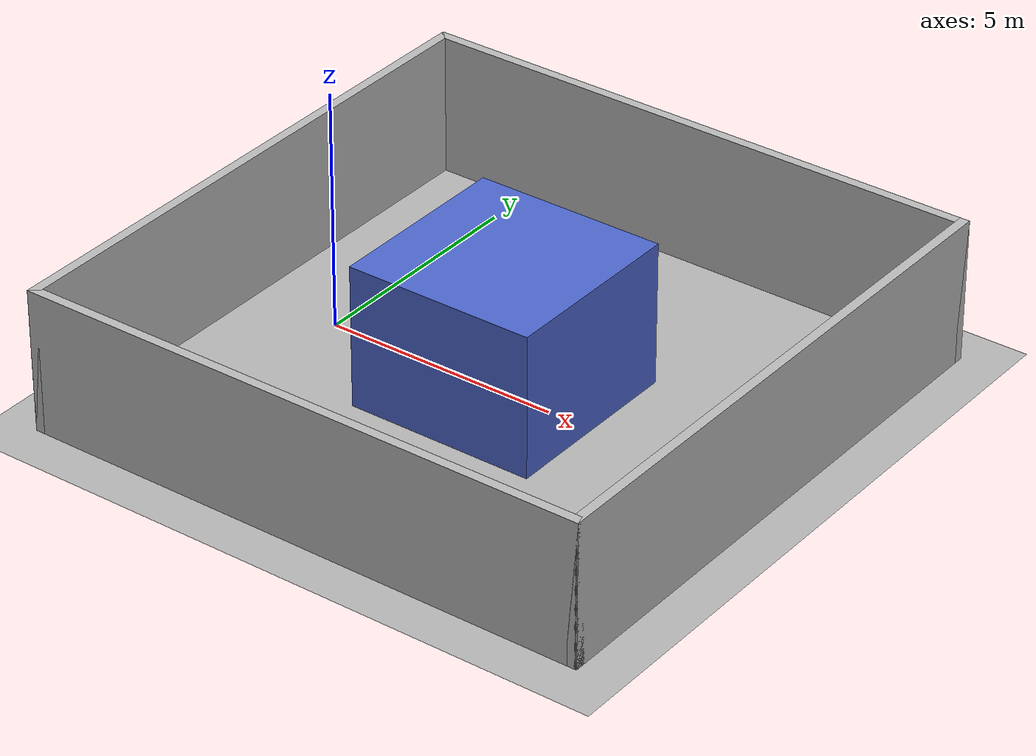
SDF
<?xml version="1.0"?>
<sdf version="1.6">
  <world name="square_loop">
    <!-- MuJoCo starts the G1 near (0, 0). Keep that point in the open corridor. -->
    <gravity>0 0 -9.8</gravity>
    <physics type="ode">
      <real_time_update_rate>1000</real_time_update_rate>
      <max_step_size>0.001</max_step_size>
    </physics>

    <light name="sun" type="directional">
      <pose>0 0 10 0 0 0</pose>
      <diffuse>0.8 0.8 0.8 1</diffuse>
      <specular>0.2 0.2 0.2 1</specular>
      <direction>-0.5 0.1 -0.9</direction>
    </light>

    <model name="floor">
      <static>true</static>
      <link name="floor">
        <collision name="floor_collision">
          <geometry><plane><normal>0 0 1</normal><size>30 30</size></plane></geometry>
        </collision>
        <visual name="floor_visual">
          <geometry><plane><normal>0 0 1</normal><size>30 30</size></plane></geometry>
          <material><ambient>0.7 0.7 0.7 1</ambient></material>
        </visual>
      </link>
    </model>

    <!-- Outer boundary: x=-2..10, y=-6..6. Wall height is above the LiDAR. -->
    <model name="outer_walls">
      <static>true</static>
      <pose>4 0 0 0 0 0</pose>
      <link name="walls">
        <collision name="north_collision">
          <pose>0 6 1.5 0 0 0</pose>
          <geometry><box><size>12.2 0.2 3</size></box></geometry>
        </collision>
        <visual name="north_visual">
          <pose>0 6 1.5 0 0 0</pose>
          <geometry><box><size>12.2 0.2 3</size></box></geometry>
        </visual>
        <collision name="south_collision">
          <pose>0 -6 1.5 0 0 0</pose>
          <geometry><box><size>12.2 0.2 3</size></box></geometry>
        </collision>
        <visual name="south_visual">
          <pose>0 -6 1.5 0 0 0</pose>
          <geometry><box><size>12.2 0.2 3</size></box></geometry>
        </visual>
        <collision name="east_collision">
          <pose>6 0 1.5 0 0 0</pose>
          <geometry><box><size>0.2 12.2 3</size></box></geometry>
        </collision>
        <visual name="east_visual">
          <pose>6 0 1.5 0 0 0</pose>
          <geometry><box><size>0.2 12.2 3</size></box></geometry>
        </visual>
        <collision name="west_collision">
          <pose>-6 0 1.5 0 0 0</pose>
          <geometry><box><size>0.2 12.2 3</size></box></geometry>
        </collision>
        <visual name="west_visual">
          <pose>-6 0 1.5 0 0 0</pose>
          <geometry><box><size>0.2 12.2 3</size></box></geometry>
        </visual>
      </link>
    </model>

    <!-- Solid 4 x 4 m central island; the corridor around it is about 4 m wide. -->
    <model name="central_wall">
      <static>true</static>
      <pose>4 0 1.5 0 0 0</pose>
      <link name="wall">
        <collision name="collision">
          <geometry><box><size>4 4 3</size></box></geometry>
        </collision>
        <visual name="visual">
          <geometry><box><size>4 4 3</size></box></geometry>
          <material><ambient>0.3 0.4 0.8 1</ambient></material>
        </visual>
      </link>
    </model>
  </world>
</sdf>
